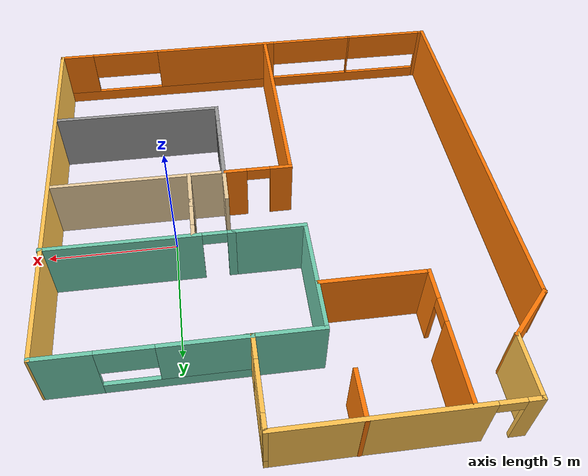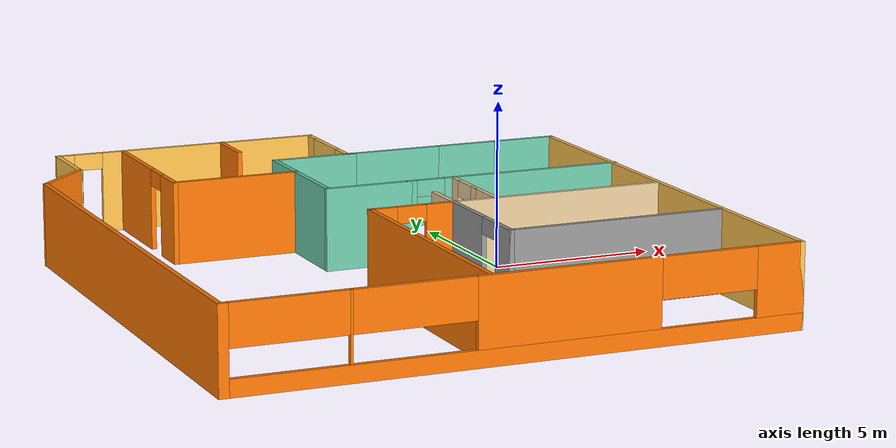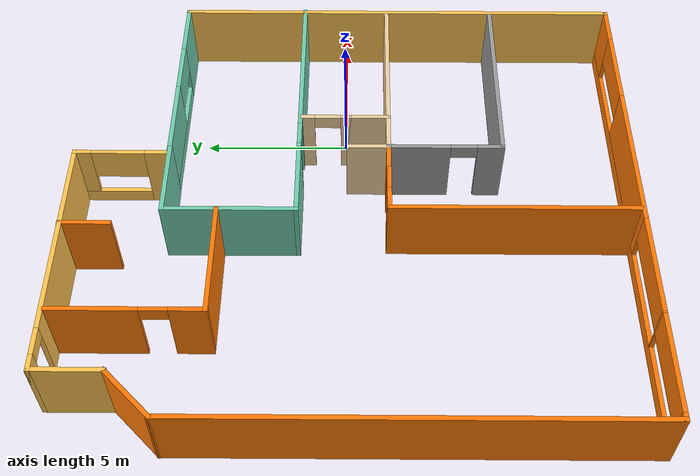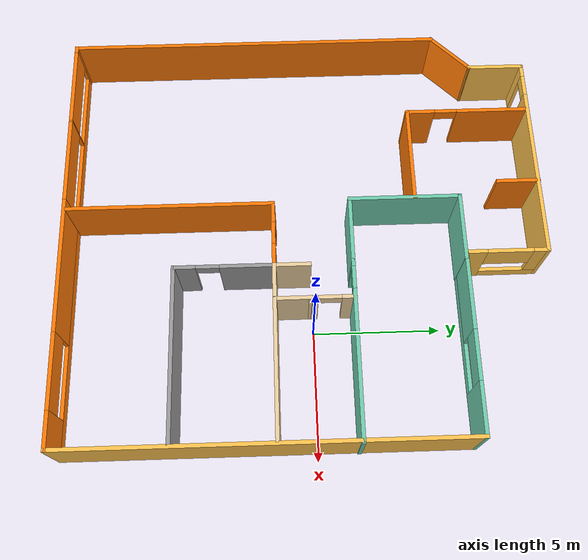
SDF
<?xml version='1.0'?>
<sdf version='1.6'>
  <model name='model'>
    <pose frame=''>-3.789 -0.281011 0 0 -0 0</pose>
    <link name='Wall_250'>
      <pose frame=''>1.40261 7.79151 0 0 -0 1.5708</pose>
      <visual name='Wall_250_Visual_0'>
        <pose frame=''>-1.21186 0 1.25 0 -0 0</pose>
        <geometry>
          <box>
            <size>0.907436 0.15 2.5</size>
          </box>
        </geometry>
        <material>
          <script>
            <uri>file://media/materials/scripts/gazebo.material</uri>
            <name>Gazebo/Grey</name>
          </script>
          <ambient>1 0.764706 0.305882 1</ambient>
        </material>
        <meta>
          <layer>0</layer>
        </meta>
      </visual>
      <collision name='Wall_250_Collision_0'>
        <geometry>
          <box>
            <size>0.907436 0.15 2.5</size>
          </box>
        </geometry>
        <pose frame=''>-1.21186 0 1.25 0 -0 0</pose>
      </collision>
      <visual name='Wall_250_Visual_1'>
        <pose frame=''>0.453718 0 0.25 0 -0 0</pose>
        <geometry>
          <box>
            <size>2.42372 0.15 0.5</size>
          </box>
        </geometry>
        <material>
          <script>
            <uri>file://media/materials/scripts/gazebo.material</uri>
            <name>Gazebo/Grey</name>
          </script>
          <ambient>1 0.764706 0.305882 1</ambient>
        </material>
        <meta>
          <layer>0</layer>
        </meta>
      </visual>
      <collision name='Wall_250_Collision_1'>
        <geometry>
          <box>
            <size>2.42372 0.15 0.5</size>
          </box>
        </geometry>
        <pose frame=''>0.453718 0 0.25 0 -0 0</pose>
      </collision>
      <visual name='Wall_250_Visual_2'>
        <pose frame=''>1.34733 0 1.5 0 -0 0</pose>
        <geometry>
          <box>
            <size>0.636504 0.15 2</size>
          </box>
        </geometry>
        <material>
          <script>
            <uri>file://media/materials/scripts/gazebo.material</uri>
            <name>Gazebo/Grey</name>
          </script>
          <ambient>1 0.764706 0.305882 1</ambient>
        </material>
        <meta>
          <layer>0</layer>
        </meta>
      </visual>
      <collision name='Wall_250_Collision_2'>
        <geometry>
          <box>
            <size>0.636504 0.15 2</size>
          </box>
        </geometry>
        <pose frame=''>1.34733 0 1.5 0 -0 0</pose>
      </collision>
      <visual name='Wall_250_Visual_3'>
        <pose frame=''>0.135466 0 1.9 0 -0 0</pose>
        <geometry>
          <box>
            <size>1.78722 0.15 1.2</size>
          </box>
        </geometry>
        <material>
          <script>
            <uri>file://media/materials/scripts/gazebo.material</uri>
            <name>Gazebo/Grey</name>
          </script>
          <ambient>1 0.764706 0.305882 1</ambient>
        </material>
        <meta>
          <layer>0</layer>
        </meta>
      </visual>
      <collision name='Wall_250_Collision_3'>
        <geometry>
          <box>
            <size>1.78722 0.15 1.2</size>
          </box>
        </geometry>
        <pose frame=''>0.135466 0 1.9 0 -0 0</pose>
      </collision>
    </link>
    <link name='Wall_251'>
      <pose frame=''>-2.77239 9.38209 0 0 -0 3.14159</pose>
      <visual name='Wall_251_Visual_0'>
        <pose frame=''>-0.736206 0 1.25 0 -0 0</pose>
        <geometry>
          <box>
            <size>7.02759 0.15 2.5</size>
          </box>
        </geometry>
        <material>
          <script>
            <uri>file://media/materials/scripts/gazebo.material</uri>
            <name>Gazebo/Grey</name>
          </script>
          <ambient>1 0.764706 0.305882 1</ambient>
        </material>
        <meta>
          <layer>0</layer>
        </meta>
      </visual>
      <collision name='Wall_251_Collision_0'>
        <geometry>
          <box>
            <size>7.02759 0.15 2.5</size>
          </box>
        </geometry>
        <pose frame=''>-0.736206 0 1.25 0 -0 0</pose>
      </collision>
      <visual name='Wall_251_Visual_1'>
        <pose frame=''>3.96379 0 1.25 0 -0 0</pose>
        <geometry>
          <box>
            <size>0.572412 0.15 2.5</size>
          </box>
        </geometry>
        <material>
          <script>
            <uri>file://media/materials/scripts/gazebo.material</uri>
            <name>Gazebo/Grey</name>
          </script>
          <ambient>1 0.764706 0.305882 1</ambient>
        </material>
        <meta>
          <layer>0</layer>
        </meta>
      </visual>
      <collision name='Wall_251_Collision_1'>
        <geometry>
          <box>
            <size>0.572412 0.15 2.5</size>
          </box>
        </geometry>
        <pose frame=''>3.96379 0 1.25 0 -0 0</pose>
      </collision>
      <visual name='Wall_251_Visual_2'>
        <pose frame=''>3.22759 0 2.25 0 -0 0</pose>
        <geometry>
          <box>
            <size>0.9 0.15 0.5</size>
          </box>
        </geometry>
        <material>
          <script>
            <uri>file://media/materials/scripts/gazebo.material</uri>
            <name>Gazebo/Grey</name>
          </script>
          <ambient>1 0.764706 0.305882 1</ambient>
        </material>
        <meta>
          <layer>0</layer>
        </meta>
      </visual>
      <collision name='Wall_251_Collision_2'>
        <geometry>
          <box>
            <size>0.9 0.15 0.5</size>
          </box>
        </geometry>
        <pose frame=''>3.22759 0 2.25 0 -0 0</pose>
      </collision>
    </link>
    <link name='Wall_252'>
      <collision name='Wall_252_Collision'>
        <geometry>
          <box>
            <size>2.31518 0.15 2.5</size>
          </box>
        </geometry>
        <pose frame=''>0 0 1.25 0 -0 0</pose>
      </collision>
      <visual name='Wall_252_Visual'>
        <pose frame=''>0 0 1.25 0 -0 0</pose>
        <geometry>
          <box>
            <size>2.31518 0.15 2.5</size>
          </box>
        </geometry>
        <material>
          <script>
            <uri>file://media/materials/scripts/gazebo.material</uri>
            <name>Gazebo/Grey</name>
          </script>
          <ambient>1 0.764706 0.305882 1</ambient>
        </material>
        <meta>
          <layer>0</layer>
        </meta>
      </visual>
      <pose frame=''>-6.94739 8.2731 0 0 0 -1.5708</pose>
    </link>
    <link name='Wall_253'>
      <collision name='Wall_253_Collision'>
        <geometry>
          <box>
            <size>2.25 0.15 2.5</size>
          </box>
        </geometry>
        <pose frame=''>0 0 1.25 0 -0 0</pose>
      </collision>
      <visual name='Wall_253_Visual'>
        <pose frame=''>0 0 1.25 0 -0 0</pose>
        <geometry>
          <box>
            <size>2.25 0.15 2.5</size>
          </box>
        </geometry>
        <material>
          <script>
            <uri>file://media/materials/scripts/gazebo.material</uri>
            <name>Gazebo/Grey</name>
          </script>
          <ambient>0.996078 0.47451 0.0196078 1</ambient>
        </material>
        <meta>
          <layer>0</layer>
        </meta>
      </visual>
      <pose frame=''>-7.68985 6.44804 0 0 0 -2.35619</pose>
    </link>
    <link name='Wall_254'>
      <collision name='Wall_254_Collision'>
        <geometry>
          <box>
            <size>15.25 0.15 2.5</size>
          </box>
        </geometry>
        <pose frame=''>0 0 1.25 0 -0 0</pose>
      </collision>
      <visual name='Wall_254_Visual'>
        <pose frame=''>0 0 1.25 0 -0 0</pose>
        <geometry>
          <box>
            <size>15.25 0.15 2.5</size>
          </box>
        </geometry>
        <material>
          <script>
            <uri>file://media/materials/scripts/gazebo.material</uri>
            <name>Gazebo/Grey</name>
          </script>
          <ambient>0.996078 0.47451 0.0196078 1</ambient>
        </material>
        <meta>
          <layer>0</layer>
        </meta>
      </visual>
      <pose frame=''>-8.43231 -1.84442 0 0 0 -1.5708</pose>
    </link>
    <link name='Wall_255'>
      <pose frame=''>-0.007316 -9.39442 0 0 -0 0</pose>
      <visual name='Wall_255_Visual_0'>
        <pose frame=''>-8.35211 0 1.25 0 -0 0</pose>
        <geometry>
          <box>
            <size>0.295782 0.15 2.5</size>
          </box>
        </geometry>
        <material>
          <script>
            <uri>file://media/materials/scripts/gazebo.material</uri>
            <name>Gazebo/Grey</name>
          </script>
          <ambient>0.996078 0.47451 0.0196078 1</ambient>
        </material>
        <meta>
          <layer>0</layer>
        </meta>
      </visual>
      <collision name='Wall_255_Collision_0'>
        <geometry>
          <box>
            <size>0.295782 0.15 2.5</size>
          </box>
        </geometry>
        <pose frame=''>-8.35211 0 1.25 0 -0 0</pose>
      </collision>
      <visual name='Wall_255_Visual_1'>
        <pose frame=''>0.147891 0 0.25 0 -0 0</pose>
        <geometry>
          <box>
            <size>16.7042 0.15 0.5</size>
          </box>
        </geometry>
        <material>
          <script>
            <uri>file://media/materials/scripts/gazebo.material</uri>
            <name>Gazebo/Grey</name>
          </script>
          <ambient>0.996078 0.47451 0.0196078 1</ambient>
        </material>
        <meta>
          <layer>0</layer>
        </meta>
      </visual>
      <collision name='Wall_255_Collision_1'>
        <geometry>
          <box>
            <size>16.7042 0.15 0.5</size>
          </box>
        </geometry>
        <pose frame=''>0.147891 0 0.25 0 -0 0</pose>
      </collision>
      <visual name='Wall_255_Visual_2'>
        <pose frame=''>-4.85454 0 1.5 0 -0 0</pose>
        <geometry>
          <box>
            <size>0.068434 0.15 2</size>
          </box>
        </geometry>
        <material>
          <script>
            <uri>file://media/materials/scripts/gazebo.material</uri>
            <name>Gazebo/Grey</name>
          </script>
          <ambient>0.996078 0.47451 0.0196078 1</ambient>
        </material>
        <meta>
          <layer>0</layer>
        </meta>
      </visual>
      <collision name='Wall_255_Collision_2'>
        <geometry>
          <box>
            <size>0.068434 0.15 2</size>
          </box>
        </geometry>
        <pose frame=''>-4.85454 0 1.5 0 -0 0</pose>
      </collision>
      <visual name='Wall_255_Visual_3'>
        <pose frame=''>1.41416 0 1.5 0 -0 0</pose>
        <geometry>
          <box>
            <size>5.41879 0.15 2</size>
          </box>
        </geometry>
        <material>
          <script>
            <uri>file://media/materials/scripts/gazebo.material</uri>
            <name>Gazebo/Grey</name>
          </script>
          <ambient>0.996078 0.47451 0.0196078 1</ambient>
        </material>
        <meta>
          <layer>0</layer>
        </meta>
      </visual>
      <collision name='Wall_255_Collision_3'>
        <geometry>
          <box>
            <size>5.41879 0.15 2</size>
          </box>
        </geometry>
        <pose frame=''>1.41416 0 1.5 0 -0 0</pose>
      </collision>
      <visual name='Wall_255_Visual_4'>
        <pose frame=''>7.76488 0 1.5 0 -0 0</pose>
        <geometry>
          <box>
            <size>1.47024 0.15 2</size>
          </box>
        </geometry>
        <material>
          <script>
            <uri>file://media/materials/scripts/gazebo.material</uri>
            <name>Gazebo/Grey</name>
          </script>
          <ambient>0.996078 0.47451 0.0196078 1</ambient>
        </material>
        <meta>
          <layer>0</layer>
        </meta>
      </visual>
      <collision name='Wall_255_Collision_4'>
        <geometry>
          <box>
            <size>1.47024 0.15 2</size>
          </box>
        </geometry>
        <pose frame=''>7.76488 0 1.5 0 -0 0</pose>
      </collision>
      <visual name='Wall_255_Visual_5'>
        <pose frame=''>-6.54649 0 1.9 0 -0 0</pose>
        <geometry>
          <box>
            <size>3.31547 0.15 1.2</size>
          </box>
        </geometry>
        <material>
          <script>
            <uri>file://media/materials/scripts/gazebo.material</uri>
            <name>Gazebo/Grey</name>
          </script>
          <ambient>0.996078 0.47451 0.0196078 1</ambient>
        </material>
        <meta>
          <layer>0</layer>
        </meta>
      </visual>
      <collision name='Wall_255_Collision_5'>
        <geometry>
          <box>
            <size>3.31547 0.15 1.2</size>
          </box>
        </geometry>
        <pose frame=''>-6.54649 0 1.9 0 -0 0</pose>
      </collision>
      <visual name='Wall_255_Visual_6'>
        <pose frame=''>-3.05778 0 1.9 0 -0 0</pose>
        <geometry>
          <box>
            <size>3.52509 0.15 1.2</size>
          </box>
        </geometry>
        <material>
          <script>
            <uri>file://media/materials/scripts/gazebo.material</uri>
            <name>Gazebo/Grey</name>
          </script>
          <ambient>0.996078 0.47451 0.0196078 1</ambient>
        </material>
        <meta>
          <layer>0</layer>
        </meta>
      </visual>
      <collision name='Wall_255_Collision_6'>
        <geometry>
          <box>
            <size>3.52509 0.15 1.2</size>
          </box>
        </geometry>
        <pose frame=''>-3.05778 0 1.9 0 -0 0</pose>
      </collision>
      <visual name='Wall_255_Visual_7'>
        <pose frame=''>5.57666 0 1.9 0 -0 0</pose>
        <geometry>
          <box>
            <size>2.9062 0.15 1.2</size>
          </box>
        </geometry>
        <material>
          <script>
            <uri>file://media/materials/scripts/gazebo.material</uri>
            <name>Gazebo/Grey</name>
          </script>
          <ambient>0.996078 0.47451 0.0196078 1</ambient>
        </material>
        <meta>
          <layer>0</layer>
        </meta>
      </visual>
      <collision name='Wall_255_Collision_7'>
        <geometry>
          <box>
            <size>2.9062 0.15 1.2</size>
          </box>
        </geometry>
        <pose frame=''>5.57666 0 1.9 0 -0 0</pose>
      </collision>
    </link>
    <link name='Wall_256'>
      <collision name='Wall_256_Collision'>
        <geometry>
          <box>
            <size>15.75 0.15 2.5</size>
          </box>
        </geometry>
        <pose frame=''>0 0 1.25 0 -0 0</pose>
      </collision>
      <visual name='Wall_256_Visual'>
        <pose frame=''>0 0 1.25 0 -0 0</pose>
        <geometry>
          <box>
            <size>15.75 0.15 2.5</size>
          </box>
        </geometry>
        <material>
          <script>
            <uri>file://media/materials/scripts/gazebo.material</uri>
            <name>Gazebo/Grey</name>
          </script>
          <ambient>1 0.764706 0.305882 1</ambient>
        </material>
        <meta>
          <layer>0</layer>
        </meta>
      </visual>
      <pose frame=''>8.41768 -1.59442 0 0 -0 1.5708</pose>
    </link>
    <link name='Wall_257'>
      <pose frame=''>4.91589 6.20685 0 0 -0 3.14123</pose>
      <visual name='Wall_257_Visual_0'>
        <pose frame=''>-2.54201 0 1.25 0 -0 0</pose>
        <geometry>
          <box>
            <size>2.06957 0.15 2.5</size>
          </box>
        </geometry>
        <material>
          <script>
            <uri>file://media/materials/scripts/gazebo.material</uri>
            <name>Gazebo/Grey</name>
          </script>
          <ambient>0.435294 0.796078 0.67451 1</ambient>
        </material>
        <meta>
          <layer>0</layer>
        </meta>
      </visual>
      <collision name='Wall_257_Collision_0'>
        <geometry>
          <box>
            <size>2.06957 0.15 2.5</size>
          </box>
        </geometry>
        <pose frame=''>-2.54201 0 1.25 0 -0 0</pose>
      </collision>
      <visual name='Wall_257_Visual_1'>
        <pose frame=''>1.03478 0 0.25 0 -0 0</pose>
        <geometry>
          <box>
            <size>5.08402 0.15 0.5</size>
          </box>
        </geometry>
        <material>
          <script>
            <uri>file://media/materials/scripts/gazebo.material</uri>
            <name>Gazebo/Grey</name>
          </script>
          <ambient>0.435294 0.796078 0.67451 1</ambient>
        </material>
        <meta>
          <layer>0</layer>
        </meta>
      </visual>
      <collision name='Wall_257_Collision_1'>
        <geometry>
          <box>
            <size>5.08402 0.15 0.5</size>
          </box>
        </geometry>
        <pose frame=''>1.03478 0 0.25 0 -0 0</pose>
      </collision>
      <visual name='Wall_257_Visual_2'>
        <pose frame=''>2.00299 0 1.5 0 -0 0</pose>
        <geometry>
          <box>
            <size>3.14761 0.15 2</size>
          </box>
        </geometry>
        <material>
          <script>
            <uri>file://media/materials/scripts/gazebo.material</uri>
            <name>Gazebo/Grey</name>
          </script>
          <ambient>0.435294 0.796078 0.67451 1</ambient>
        </material>
        <meta>
          <layer>0</layer>
        </meta>
      </visual>
      <collision name='Wall_257_Collision_2'>
        <geometry>
          <box>
            <size>3.14761 0.15 2</size>
          </box>
        </geometry>
        <pose frame=''>2.00299 0 1.5 0 -0 0</pose>
      </collision>
      <visual name='Wall_257_Visual_3'>
        <pose frame=''>-0.53902 0 1.9 0 -0 0</pose>
        <geometry>
          <box>
            <size>1.93641 0.15 1.2</size>
          </box>
        </geometry>
        <material>
          <script>
            <uri>file://media/materials/scripts/gazebo.material</uri>
            <name>Gazebo/Grey</name>
          </script>
          <ambient>0.435294 0.796078 0.67451 1</ambient>
        </material>
        <meta>
          <layer>0</layer>
        </meta>
      </visual>
      <collision name='Wall_257_Collision_3'>
        <geometry>
          <box>
            <size>1.93641 0.15 1.2</size>
          </box>
        </geometry>
        <pose frame=''>-0.53902 0 1.9 0 -0 0</pose>
      </collision>
    </link>
    <link name='Wall_259'>
      <collision name='Wall_259_Collision'>
        <geometry>
          <box>
            <size>1.75 0.15 2.5</size>
          </box>
        </geometry>
        <pose frame=''>0 0 1.25 0 -0 0</pose>
      </collision>
      <visual name='Wall_259_Visual'>
        <pose frame=''>0 0 1.25 0 -0 0</pose>
        <geometry>
          <box>
            <size>1.75 0.15 2.5</size>
          </box>
        </geometry>
        <material>
          <script>
            <uri>file://media/materials/scripts/gazebo.material</uri>
            <name>Gazebo/Grey</name>
          </script>
          <ambient>0.996078 0.47451 0.0196078 1</ambient>
        </material>
        <meta>
          <layer>0</layer>
        </meta>
      </visual>
      <pose frame=''>-1.58228 8.59442 0 0 0 -1.5708</pose>
    </link>
    <link name='Wall_261'>
      <pose frame=''>-4.85388 6.84315 0 0 0 -1.5708</pose>
      <visual name='Wall_261_Visual_0'>
        <pose frame=''>-1.05218 0 1.25 0 -0 0</pose>
        <geometry>
          <box>
            <size>2.89563 0.15 2.5</size>
          </box>
        </geometry>
        <material>
          <script>
            <uri>file://media/materials/scripts/gazebo.material</uri>
            <name>Gazebo/Grey</name>
          </script>
          <ambient>0.996078 0.47451 0.0196078 1</ambient>
        </material>
        <meta>
          <layer>0</layer>
        </meta>
      </visual>
      <collision name='Wall_261_Collision_0'>
        <geometry>
          <box>
            <size>2.89563 0.15 2.5</size>
          </box>
        </geometry>
        <pose frame=''>-1.05218 0 1.25 0 -0 0</pose>
      </collision>
      <visual name='Wall_261_Visual_1'>
        <pose frame=''>1.89782 0 1.25 0 -0 0</pose>
        <geometry>
          <box>
            <size>1.20437 0.15 2.5</size>
          </box>
        </geometry>
        <material>
          <script>
            <uri>file://media/materials/scripts/gazebo.material</uri>
            <name>Gazebo/Grey</name>
          </script>
          <ambient>0.996078 0.47451 0.0196078 1</ambient>
        </material>
        <meta>
          <layer>0</layer>
        </meta>
      </visual>
      <collision name='Wall_261_Collision_1'>
        <geometry>
          <box>
            <size>1.20437 0.15 2.5</size>
          </box>
        </geometry>
        <pose frame=''>1.89782 0 1.25 0 -0 0</pose>
      </collision>
      <visual name='Wall_261_Visual_2'>
        <pose frame=''>0.845632 0 2.25 0 -0 0</pose>
        <geometry>
          <box>
            <size>0.9 0.15 0.5</size>
          </box>
        </geometry>
        <material>
          <script>
            <uri>file://media/materials/scripts/gazebo.material</uri>
            <name>Gazebo/Grey</name>
          </script>
          <ambient>0.996078 0.47451 0.0196078 1</ambient>
        </material>
        <meta>
          <layer>0</layer>
        </meta>
      </visual>
      <collision name='Wall_261_Collision_2'>
        <geometry>
          <box>
            <size>0.9 0.15 0.5</size>
          </box>
        </geometry>
        <pose frame=''>0.845632 0 2.25 0 -0 0</pose>
      </collision>
    </link>
    <link name='Wall_266'>
      <collision name='Wall_266_Collision'>
        <geometry>
          <box>
            <size>8.25 0.15 2.5</size>
          </box>
        </geometry>
        <pose frame=''>0 0 1.25 0 -0 0</pose>
      </collision>
      <visual name='Wall_266_Visual'>
        <pose frame=''>0 0 1.25 0 -0 0</pose>
        <geometry>
          <box>
            <size>8.25 0.15 2.5</size>
          </box>
        </geometry>
        <material>
          <script>
            <uri>file://media/materials/scripts/gazebo.material</uri>
            <name>Gazebo/Grey</name>
          </script>
          <ambient>0.996078 0.47451 0.0196078 1</ambient>
        </material>
        <meta>
          <layer>0</layer>
        </meta>
      </visual>
      <pose frame=''>-0.884083 -5.23961 0 0 -0 1.5708</pose>
    </link>
    <link name='Wall_267'>
      <pose frame=''>0.415917 -1.18961 0 0 -0 0</pose>
      <visual name='Wall_267_Visual_0'>
        <pose frame=''>-0.934942 0 1.25 0 -0 0</pose>
        <geometry>
          <box>
            <size>0.880117 0.15 2.5</size>
          </box>
        </geometry>
        <material>
          <script>
            <uri>file://media/materials/scripts/gazebo.material</uri>
            <name>Gazebo/Grey</name>
          </script>
          <ambient>0.996078 0.47451 0.0196078 1</ambient>
        </material>
        <meta>
          <layer>0</layer>
        </meta>
      </visual>
      <collision name='Wall_267_Collision_0'>
        <geometry>
          <box>
            <size>0.880117 0.15 2.5</size>
          </box>
        </geometry>
        <pose frame=''>-0.934942 0 1.25 0 -0 0</pose>
      </collision>
      <visual name='Wall_267_Visual_1'>
        <pose frame=''>0.890058 0 1.25 0 -0 0</pose>
        <geometry>
          <box>
            <size>0.969883 0.15 2.5</size>
          </box>
        </geometry>
        <material>
          <script>
            <uri>file://media/materials/scripts/gazebo.material</uri>
            <name>Gazebo/Grey</name>
          </script>
          <ambient>0.996078 0.47451 0.0196078 1</ambient>
        </material>
        <meta>
          <layer>0</layer>
        </meta>
      </visual>
      <collision name='Wall_267_Collision_1'>
        <geometry>
          <box>
            <size>0.969883 0.15 2.5</size>
          </box>
        </geometry>
        <pose frame=''>0.890058 0 1.25 0 -0 0</pose>
      </collision>
      <visual name='Wall_267_Visual_2'>
        <pose frame=''>-0.044883 0 2.25 0 -0 0</pose>
        <geometry>
          <box>
            <size>0.9 0.15 0.5</size>
          </box>
        </geometry>
        <material>
          <script>
            <uri>file://media/materials/scripts/gazebo.material</uri>
            <name>Gazebo/Grey</name>
          </script>
          <ambient>0.996078 0.47451 0.0196078 1</ambient>
        </material>
        <meta>
          <layer>0</layer>
        </meta>
      </visual>
      <collision name='Wall_267_Collision_2'>
        <geometry>
          <box>
            <size>0.9 0.15 0.5</size>
          </box>
        </geometry>
        <pose frame=''>-0.044883 0 2.25 0 -0 0</pose>
      </collision>
    </link>
    <link name='Wall_268'>
      <collision name='Wall_268_Collision'>
        <geometry>
          <box>
            <size>1.5 0.15 2.5</size>
          </box>
        </geometry>
        <pose frame=''>0 0 1.25 0 -0 0</pose>
      </collision>
      <visual name='Wall_268_Visual'>
        <pose frame=''>0 0 1.25 0 -0 0</pose>
        <geometry>
          <box>
            <size>1.5 0.15 2.5</size>
          </box>
        </geometry>
        <material>
          <script>
            <uri>file://media/materials/scripts/gazebo.material</uri>
            <name>Gazebo/Grey</name>
          </script>
          <ambient>0.921569 0.807843 0.615686 1</ambient>
        </material>
        <meta>
          <layer>0</layer>
        </meta>
      </visual>
      <pose frame=''>1.71592 -0.514608 0 0 -0 1.5708</pose>
    </link>
    <link name='Wall_272'>
      <pose frame=''>1.71592 -3.11461 0 0 0 -1.5708</pose>
      <visual name='Wall_272_Visual_0'>
        <pose frame=''>-0.913683 0 1.25 0 -0 0</pose>
        <geometry>
          <box>
            <size>2.17263 0.15 2.5</size>
          </box>
        </geometry>
        <material>
          <script>
            <uri>file://media/materials/scripts/gazebo.material</uri>
            <name>Gazebo/Grey</name>
          </script>
          <ambient>1 1 1 1</ambient>
        </material>
        <meta>
          <layer>0</layer>
        </meta>
      </visual>
      <collision name='Wall_272_Collision_0'>
        <geometry>
          <box>
            <size>2.17263 0.15 2.5</size>
          </box>
        </geometry>
        <pose frame=''>-0.913683 0 1.25 0 -0 0</pose>
      </collision>
      <visual name='Wall_272_Visual_1'>
        <pose frame=''>1.53632 0 1.25 0 -0 0</pose>
        <geometry>
          <box>
            <size>0.927367 0.15 2.5</size>
          </box>
        </geometry>
        <material>
          <script>
            <uri>file://media/materials/scripts/gazebo.material</uri>
            <name>Gazebo/Grey</name>
          </script>
          <ambient>1 1 1 1</ambient>
        </material>
        <meta>
          <layer>0</layer>
        </meta>
      </visual>
      <collision name='Wall_272_Collision_1'>
        <geometry>
          <box>
            <size>0.927367 0.15 2.5</size>
          </box>
        </geometry>
        <pose frame=''>1.53632 0 1.25 0 -0 0</pose>
      </collision>
      <visual name='Wall_272_Visual_2'>
        <pose frame=''>0.622633 0 2.25 0 -0 0</pose>
        <geometry>
          <box>
            <size>0.9 0.15 0.5</size>
          </box>
        </geometry>
        <material>
          <script>
            <uri>file://media/materials/scripts/gazebo.material</uri>
            <name>Gazebo/Grey</name>
          </script>
          <ambient>1 1 1 1</ambient>
        </material>
        <meta>
          <layer>0</layer>
        </meta>
      </visual>
      <collision name='Wall_272_Collision_2'>
        <geometry>
          <box>
            <size>0.9 0.15 0.5</size>
          </box>
        </geometry>
        <pose frame=''>0.622633 0 2.25 0 -0 0</pose>
      </collision>
    </link>
    <link name='Wall_273'>
      <collision name='Wall_273_Collision'>
        <geometry>
          <box>
            <size>6.75 0.15 2.5</size>
          </box>
        </geometry>
        <pose frame=''>0 0 1.25 0 -0 0</pose>
      </collision>
      <visual name='Wall_273_Visual'>
        <pose frame=''>0 0 1.25 0 -0 0</pose>
        <geometry>
          <box>
            <size>6.75 0.15 2.5</size>
          </box>
        </geometry>
        <material>
          <script>
            <uri>file://media/materials/scripts/gazebo.material</uri>
            <name>Gazebo/Grey</name>
          </script>
          <ambient>1 1 1 1</ambient>
        </material>
        <meta>
          <layer>0</layer>
        </meta>
      </visual>
      <pose frame=''>5.01592 -5.03961 0 0 -0 0</pose>
    </link>
    <link name='Wall_275'>
      <collision name='Wall_275_Collision'>
        <geometry>
          <box>
            <size>6.75 0.15 2.5</size>
          </box>
        </geometry>
        <pose frame=''>0 0 1.25 0 -0 0</pose>
      </collision>
      <visual name='Wall_275_Visual'>
        <pose frame=''>0 0 1.25 0 -0 0</pose>
        <geometry>
          <box>
            <size>6.75 0.15 2.5</size>
          </box>
        </geometry>
        <material>
          <script>
            <uri>file://media/materials/scripts/gazebo.material</uri>
            <name>Gazebo/Grey</name>
          </script>
          <ambient>0.921569 0.807843 0.615686 1</ambient>
        </material>
        <meta>
          <layer>0</layer>
        </meta>
      </visual>
      <pose frame=''>5.01592 -1.18961 0 0 -0 0</pose>
    </link>
    <link name='Wall_280'>
      <collision name='Wall_280_Collision'>
        <geometry>
          <box>
            <size>1.5 0.15 2.5</size>
          </box>
        </geometry>
        <pose frame=''>0 0 1.25 0 -0 0</pose>
      </collision>
      <visual name='Wall_280_Visual'>
        <pose frame=''>0 0 1.25 0 -0 0</pose>
        <geometry>
          <box>
            <size>1.5 0.15 2.5</size>
          </box>
        </geometry>
        <material>
          <script>
            <uri>file://media/materials/scripts/gazebo.material</uri>
            <name>Gazebo/Grey</name>
          </script>
          <ambient>0.921569 0.807843 0.615686 1</ambient>
        </material>
        <meta>
          <layer>0</layer>
        </meta>
      </visual>
      <pose frame=''>3.06592 -0.514608 0 0 0 -1.5708</pose>
    </link>
    <link name='Wall_282'>
      <pose frame=''>3.06592 0.960392 0 0 -0 1.5708</pose>
      <visual name='Wall_282_Visual_0'>
        <pose frame=''>-0.692344 0 1.25 0 -0 0</pose>
        <geometry>
          <box>
            <size>0.365312 0.15 2.5</size>
          </box>
        </geometry>
        <material>
          <script>
            <uri>file://media/materials/scripts/gazebo.material</uri>
            <name>Gazebo/Grey</name>
          </script>
          <ambient>0.921569 0.807843 0.615686 1</ambient>
        </material>
        <meta>
          <layer>0</layer>
        </meta>
      </visual>
      <collision name='Wall_282_Collision_0'>
        <geometry>
          <box>
            <size>0.365312 0.15 2.5</size>
          </box>
        </geometry>
        <pose frame=''>-0.692344 0 1.25 0 -0 0</pose>
      </collision>
      <visual name='Wall_282_Visual_1'>
        <pose frame=''>0.632656 0 1.25 0 -0 0</pose>
        <geometry>
          <box>
            <size>0.484688 0.15 2.5</size>
          </box>
        </geometry>
        <material>
          <script>
            <uri>file://media/materials/scripts/gazebo.material</uri>
            <name>Gazebo/Grey</name>
          </script>
          <ambient>0.921569 0.807843 0.615686 1</ambient>
        </material>
        <meta>
          <layer>0</layer>
        </meta>
      </visual>
      <collision name='Wall_282_Collision_1'>
        <geometry>
          <box>
            <size>0.484688 0.15 2.5</size>
          </box>
        </geometry>
        <pose frame=''>0.632656 0 1.25 0 -0 0</pose>
      </collision>
      <visual name='Wall_282_Visual_2'>
        <pose frame=''>-0.059688 0 2.25 0 -0 0</pose>
        <geometry>
          <box>
            <size>0.9 0.15 0.5</size>
          </box>
        </geometry>
        <material>
          <script>
            <uri>file://media/materials/scripts/gazebo.material</uri>
            <name>Gazebo/Grey</name>
          </script>
          <ambient>0.921569 0.807843 0.615686 1</ambient>
        </material>
        <meta>
          <layer>0</layer>
        </meta>
      </visual>
      <collision name='Wall_282_Collision_2'>
        <geometry>
          <box>
            <size>0.9 0.15 0.5</size>
          </box>
        </geometry>
        <pose frame=''>-0.059688 0 2.25 0 -0 0</pose>
      </collision>
    </link>
    <link name='Wall_285'>
      <collision name='Wall_285_Collision'>
        <geometry>
          <box>
            <size>2.75 0.15 2.5</size>
          </box>
        </geometry>
        <pose frame=''>0 0 1.25 0 -0 0</pose>
      </collision>
      <visual name='Wall_285_Visual'>
        <pose frame=''>0 0 1.25 0 -0 0</pose>
        <geometry>
          <box>
            <size>2.75 0.15 2.5</size>
          </box>
        </geometry>
        <material>
          <script>
            <uri>file://media/materials/scripts/gazebo.material</uri>
            <name>Gazebo/Grey</name>
          </script>
          <ambient>0.435294 0.796078 0.67451 1</ambient>
        </material>
        <meta>
          <layer>0</layer>
        </meta>
      </visual>
      <pose frame=''>0.313383 1.84373 0 0 -0 3.14159</pose>
    </link>
    <link name='Wall_286'>
      <collision name='Wall_286_Collision'>
        <geometry>
          <box>
            <size>4.5 0.15 2.5</size>
          </box>
        </geometry>
        <pose frame=''>0 0 1.25 0 -0 0</pose>
      </collision>
      <visual name='Wall_286_Visual'>
        <pose frame=''>0 0 1.25 0 -0 0</pose>
        <geometry>
          <box>
            <size>4.5 0.15 2.5</size>
          </box>
        </geometry>
        <material>
          <script>
            <uri>file://media/materials/scripts/gazebo.material</uri>
            <name>Gazebo/Grey</name>
          </script>
          <ambient>0.435294 0.796078 0.67451 1</ambient>
        </material>
        <meta>
          <layer>0</layer>
        </meta>
      </visual>
      <pose frame=''>-0.986617 4.01874 0 0 -0 1.5708</pose>
    </link>
    <link name='Wall_287'>
      <collision name='Wall_287_Collision'>
        <geometry>
          <box>
            <size>2.75 0.15 2.5</size>
          </box>
        </geometry>
        <pose frame=''>0 0 1.25 0 -0 0</pose>
      </collision>
      <visual name='Wall_287_Visual'>
        <pose frame=''>0 0 1.25 0 -0 0</pose>
        <geometry>
          <box>
            <size>2.75 0.15 2.5</size>
          </box>
        </geometry>
        <material>
          <script>
            <uri>file://media/materials/scripts/gazebo.material</uri>
            <name>Gazebo/Grey</name>
          </script>
          <ambient>0.435294 0.796078 0.67451 1</ambient>
        </material>
        <meta>
          <layer>0</layer>
        </meta>
      </visual>
      <pose frame=''>0.313383 6.19374 0 0 -0 0</pose>
    </link>
    <link name='Wall_289'>
      <collision name='Wall_289_Collision'>
        <geometry>
          <box>
            <size>4 0.15 2.5</size>
          </box>
        </geometry>
        <pose frame=''>0 0 1.25 0 -0 0</pose>
      </collision>
      <visual name='Wall_289_Visual'>
        <pose frame=''>0 0 1.25 0 -0 0</pose>
        <geometry>
          <box>
            <size>4 0.15 2.5</size>
          </box>
        </geometry>
        <material>
          <script>
            <uri>file://media/materials/scripts/gazebo.material</uri>
            <name>Gazebo/Grey</name>
          </script>
          <ambient>0.996078 0.47451 0.0196078 1</ambient>
        </material>
        <meta>
          <layer>0</layer>
        </meta>
      </visual>
      <pose frame=''>-2.92888 4.41815 0 0 -0 0</pose>
    </link>
    <link name='Wall_291'>
      <pose frame=''>5.03838 1.84373 0 0 -0 0</pose>
      <visual name='Wall_291_Visual_0'>
        <pose frame=''>-3.34441 0 1.25 0 -0 0</pose>
        <geometry>
          <box>
            <size>0.311174 0.15 2.5</size>
          </box>
        </geometry>
        <material>
          <script>
            <uri>file://media/materials/scripts/gazebo.material</uri>
            <name>Gazebo/Grey</name>
          </script>
          <ambient>0.435294 0.796078 0.67451 1</ambient>
        </material>
        <meta>
          <layer>0</layer>
        </meta>
      </visual>
      <collision name='Wall_291_Collision_0'>
        <geometry>
          <box>
            <size>0.311174 0.15 2.5</size>
          </box>
        </geometry>
        <pose frame=''>-3.34441 0 1.25 0 -0 0</pose>
      </collision>
      <visual name='Wall_291_Visual_1'>
        <pose frame=''>0.605587 0 1.25 0 -0 0</pose>
        <geometry>
          <box>
            <size>5.78883 0.15 2.5</size>
          </box>
        </geometry>
        <material>
          <script>
            <uri>file://media/materials/scripts/gazebo.material</uri>
            <name>Gazebo/Grey</name>
          </script>
          <ambient>0.435294 0.796078 0.67451 1</ambient>
        </material>
        <meta>
          <layer>0</layer>
        </meta>
      </visual>
      <collision name='Wall_291_Collision_1'>
        <geometry>
          <box>
            <size>5.78883 0.15 2.5</size>
          </box>
        </geometry>
        <pose frame=''>0.605587 0 1.25 0 -0 0</pose>
      </collision>
      <visual name='Wall_291_Visual_2'>
        <pose frame=''>-2.73883 0 2.25 0 -0 0</pose>
        <geometry>
          <box>
            <size>0.9 0.15 0.5</size>
          </box>
        </geometry>
        <material>
          <script>
            <uri>file://media/materials/scripts/gazebo.material</uri>
            <name>Gazebo/Grey</name>
          </script>
          <ambient>0.435294 0.796078 0.67451 1</ambient>
        </material>
        <meta>
          <layer>0</layer>
        </meta>
      </visual>
      <collision name='Wall_291_Collision_2'>
        <geometry>
          <box>
            <size>0.9 0.15 0.5</size>
          </box>
        </geometry>
        <pose frame=''>-2.73883 0 2.25 0 -0 0</pose>
      </collision>
    </link>
    <static>1</static>
  </model>
</sdf>
